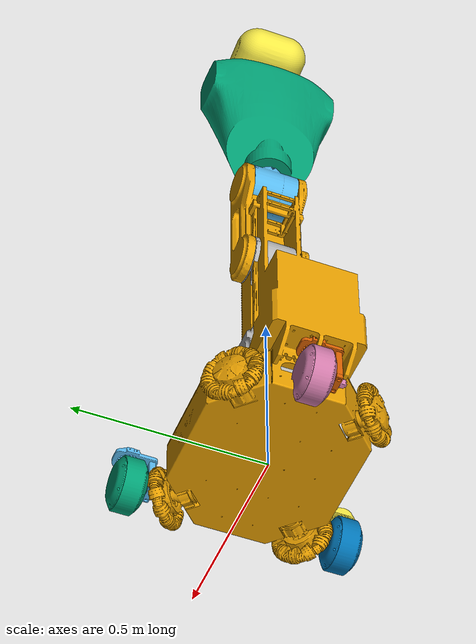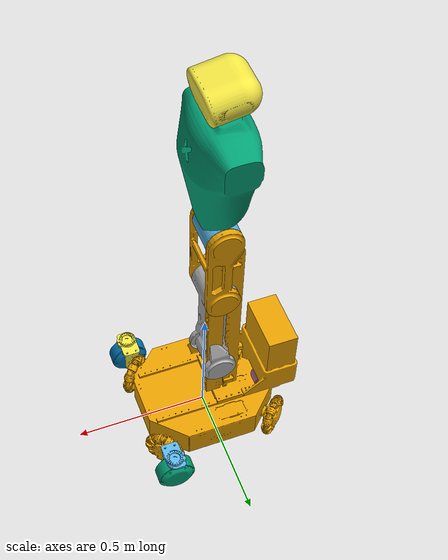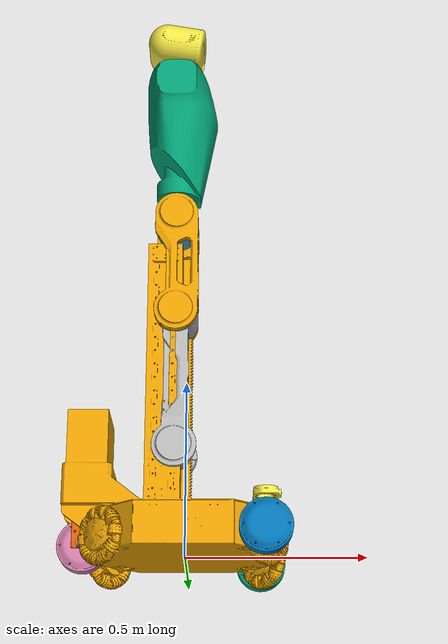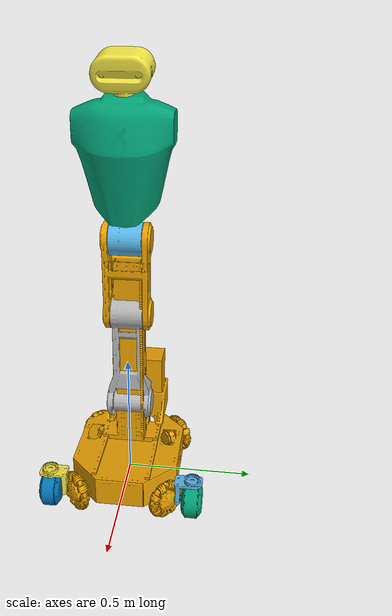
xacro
<?xml version="1.0" ?>
<!-- |    Complete Robot Description for Agibot G1                                     | -->
<!-- |    This file includes the base robot structure and both arms                    | -->
<robot name="Galaxea_R1" xmlns:xacro="http://www.ros.org/wiki/xacro">
	<xacro:property name="PI" value="3.1415926535897931"/>
	<xacro:arg name="type" default="base"/>

	<xacro:if value="${'$(arg type)' == 'base'}">
		<!-- Include Chassis -->
		<xacro:include filename="$(find galaxea_r1_description)/xacro/chassis.xacro"/>
		<xacro:Chassis/>

		<!-- Include Torso -->
		<xacro:include filename="$(find galaxea_r1_description)/xacro/torso.xacro"/>
		<xacro:Torso/>
	</xacro:if>
</robot>

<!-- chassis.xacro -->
<robot xmlns:xacro="http://www.ros.org/wiki/xacro">
	<xacro:property name="PI" value="3.1415926535897931"/>

	<xacro:macro name="Chassis">

		<!-- Base Link -->
		<link name="base_link">
			<inertial>
				<origin xyz="-0.0024126 -8.9626E-05 0.13736"/>
				<mass value="47.63"/>
				<inertia ixx="1.578" ixy="-1.2021E-05" ixz="0.053642" iyy="1.462" iyz="7.297E-06" izz="2.8318"/>
			</inertial>
			<visual>
				<geometry>
					<mesh filename="file://$(find galaxea_r1_description)/meshes/base_link.obj"/>
				</geometry>
			</visual>
			<collision>
				<geometry>
					<mesh filename="file://$(find galaxea_r1_description)/meshes/base_link.obj"/>
				</geometry>
			</collision>
		</link>

    <!-- Steer Motor Link 1 -->
    <link name="steer_motor_link1">
      <inertial>
        <origin xyz="0.00098921 -0.034312 -0.034597"/>
        <mass value="1.2"/>
        <inertia ixx="8.8522E-05" ixy="-3.7755E-06" ixz="4.5456E-09" iyy="7.5352E-05" iyz="-7.0316E-07" izz="0.00010165"/>
      </inertial>
      <visual>
        <geometry>
          <mesh filename="file://$(find galaxea_r1_description)/meshes/steer_motor.obj"/>
        </geometry>
      </visual>
    </link>

    <!-- Steer Motor Joint 1: Base to Steer Motor 1 -->
    <joint name="steer_joint1" type="revolute">
      <origin xyz="0.21516 0.28 0.12375"/>
      <parent link="base_link"/>
      <child link="steer_motor_link1"/>
      <axis xyz="0 0 1"/>
      <limit lower="${-PI/2}" upper="${PI/2}" effort="44" velocity="${PI}"/>
    </joint>

    <!-- Wheel Motor Link 1 -->
    <link name="wheel_motor_link1">
      <inertial>
        <origin xyz="-2.6184E-06 0.0015607 1.6575E-07"/>
        <mass value="5"/>
        <inertia ixx="0.00089952" ixy="6.916E-08" ixz="7.5501E-10" iyy="0.0015854" iyz="7.6011E-12" izz="0.00089958"/>
      </inertial>
      <visual>
        <geometry>
          <mesh filename="file://$(find galaxea_r1_description)/meshes/wheel_motor.obj"/>
        </geometry>
      </visual>
      <collision>
        <origin rpy="${PI/2} 0 0"/>
        <geometry>
          <cylinder radius="0.07" length="0.048"/>
        </geometry>
      </collision>
    </link>

    <!-- Wheel Motor Joint 1: Steer Motor 1 to Wheel Motor 1 -->
    <joint name="wheel_joint1" type="continuous">
      <origin xyz="0 0 -0.09525" rpy="0 0 ${PI}"/>
      <parent link="steer_motor_link1"/>
      <child link="wheel_motor_link1"/>
      <axis xyz="0 -1 0"/>
    </joint>

    <!-- Steer Motor Link 2 -->
    <link name="steer_motor_link2">
      <inertial>
        <origin xyz="0.00098879 0.034317 -0.034601"/>
        <mass value="1.2"/>
        <inertia ixx="8.8509E-05" ixy="3.7728E-06" ixz="4.584E-09" iyy="7.5337E-05" iyz="7.0145E-07" izz="0.00010162"/>
      </inertial>
      <visual>
        <origin rpy="0 0 ${PI}"/>
        <geometry>
          <mesh filename="file://$(find galaxea_r1_description)/meshes/steer_motor.obj"/>
        </geometry>
      </visual>
      <collision>
        <origin rpy="0 0 ${PI}"/>
        <geometry>
          <mesh filename="file://$(find galaxea_r1_description)/meshes/steer_motor.obj"/>
        </geometry>
      </collision>
    </link>

    <!-- Steer Motor Joint 2: Base to Steer Motor 2 -->
    <joint name="steer_joint2" type="revolute">
      <origin xyz="0.21516 -0.28 0.12375"/>
      <parent link="base_link"/>
      <child link="steer_motor_link2"/>
      <axis xyz="0 0 1"/>
      <limit lower="${-PI/2}" upper="${PI/2}" effort="44" velocity="${PI}"/>
    </joint>

    <!-- Wheel Motor Link 2 -->
    <link name="wheel_motor_link2">
      <inertial>
        <origin xyz="2.6199E-06 -0.0015607 1.6573E-07"/>
        <mass value="5"/>
        <inertia ixx="0.00089952" ixy="6.9163E-08" ixz="-7.5368E-10" iyy="0.0015854" iyz="-7.6749E-12" izz="0.00089958"/>
      </inertial>
      <visual>
        <geometry>
          <mesh filename="file://$(find galaxea_r1_description)/meshes/wheel_motor.obj"/>
        </geometry>
      </visual>
      <collision>
        <origin rpy="${PI/2} 0 0"/>
        <geometry>
          <cylinder radius="0.07" length="0.048"/>
        </geometry>
      </collision>
    </link>

    <!-- Wheel Motor Joint 2: Steer Motor 2 to Wheel Motor 2 -->
    <joint name="wheel_joint2" type="continuous">
      <origin xyz="0 0 -0.09525"/>
      <parent link="steer_motor_link2"/>
      <child link="wheel_motor_link2"/>
      <axis xyz="0 1 0"/>
    </joint>

    <!-- Steer Motor Link 3 -->
    <link name="steer_motor_link3">
      <inertial>
        <origin xyz="-0.00098879 -0.034317 -0.034601"/>
        <mass value="1.2"/>
        <inertia ixx="8.8509E-05" ixy="3.7728E-06" ixz="-4.584E-09" iyy="7.5337E-05" iyz="-7.0145E-07" izz="0.00010162"/>
      </inertial>
      <visual>
        <geometry>
          <mesh filename="file://$(find galaxea_r1_description)/meshes/steer_motor.obj"/>
        </geometry>
      </visual>
      <collision>
        <geometry>
          <mesh filename="file://$(find galaxea_r1_description)/meshes/steer_motor.obj"/>
        </geometry>
      </collision>
    </link>

    <!-- Steer Motor Joint 3: Base to Steer Motor 3 -->
    <joint name="steer_joint3" type="revolute">
      <origin xyz="-0.28084 0 0.12375"/>
      <parent link="base_link"/>
      <child link="steer_motor_link3"/>
      <axis xyz="0 0 1"/>
      <limit lower="${-PI/2}" upper="${PI/2}" effort="44" velocity="${PI}"/>
    </joint>

    <!-- Wheel Motor Link 3 -->
    <link name="wheel_motor_link3">
      <inertial>
        <origin xyz="2.6203E-06 0.0015607 -1.6564E-07"/>
        <mass value="5"/>
        <inertia ixx="0.00089952" ixy="-6.9072E-08" ixz="7.5036E-10" iyy="0.0015854" iyz="-7.845E-12" izz="0.00089958"/>
      </inertial>
      <visual>
        <geometry>
          <mesh filename="file://$(find galaxea_r1_description)/meshes/wheel_motor.obj"/>
        </geometry>
      </visual>
      <collision>
        <origin rpy="${PI/2} 0 0"/>
        <geometry>
          <cylinder radius="0.07" length="0.048"/>
        </geometry>
      </collision>
    </link>

    <!-- Wheel Motor Joint 3: Steer Motor 3 to Wheel Motor 3 -->
    <joint name="wheel_joint3" type="continuous">
      <origin xyz="0 0 -0.09525" rpy="0 0 ${PI}"/>
      <parent link="steer_motor_link3"/>
      <child link="wheel_motor_link3"/>
      <axis xyz="0 -1 0"/>
    </joint>
  </xacro:macro>
</robot>

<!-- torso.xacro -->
<robot xmlns:xacro="http://www.ros.org/wiki/xacro">
	<xacro:property name="PI" value="3.1415926535897931"/>

	<xacro:macro name="Torso">

    <!-- Torso Link 1 -->
    <link name="torso_link1">
      <inertial>
        <origin xyz="0.00065636 0.0032247 0.23142"/>
        <mass value="5.72"/>
        <inertia ixx="0.10931" ixy="7.7893E-06" ixz="-0.00017473" iyy="0.10736" iyz="0.00013763" izz="0.0081222"/>
      </inertial>
      <visual>
        <geometry>
          <mesh filename="file://$(find galaxea_r1_description)/meshes/torso_link1.obj"/>
        </geometry>
      </visual>
      <collision>
        <geometry>
          <mesh filename="file://$(find galaxea_r1_description)/meshes/torso_link1.obj"/>
        </geometry>
      </collision>
    </link>

    <!-- Torso Joint 1: Base to Torso 1 -->
    <joint name="torso_joint1" type="revolute">
      <origin xyz="-0.032845 0 0.301"/>
      <parent link="base_link"/>
      <child link="torso_link1"/>
      <axis xyz="0 1 0"/>
      <limit lower="-1.1345" upper="1.8326" effort="500" velocity="2.5"/>
    </joint>

    <!-- Torso Link 2 -->
    <link name="torso_link2">
      <inertial>
        <origin xyz="0.0052517 0.014412 0.15711"/>
        <mass value="3.5"/>
        <inertia ixx="0.026081" ixy="-3.3406E-07" ixz="0.00024541" iyy="0.027574" iyz="3.8474E-07" izz="0.0018515"/>
      </inertial>
      <visual>
        <geometry>
          <mesh filename="file://$(find galaxea_r1_description)/meshes/torso_link2.obj"/>
        </geometry>
      </visual>
      <collision>
        <geometry>
          <mesh filename="file://$(find galaxea_r1_description)/meshes/torso_link2.obj"/>
        </geometry>
      </collision>
    </link>

    <!-- Torso Joint 2: Torso 1 to Torso 2 -->
    <joint name="torso_joint2" type="revolute">
      <origin xyz="0 0 0.4"/>
      <parent link="torso_link1"/>
      <child link="torso_link2"/>
      <axis xyz="0 1 0"/>
      <limit lower="-2.7925" upper="2.5307" effort="500" velocity="2.5"/>
    </joint>

    <!-- Torso Link 3 -->
    <link name="torso_link3">
      <inertial>
        <origin xyz="-7.551E-06 -0.0092667 0.0042124"/>
        <mass value="3.4"/>
        <inertia ixx="0.0014058" ixy="3.5487E-07" ixz="9.0955E-08" iyy="0.0021992" iyz="1.6338E-05" izz="0.0013332"/>
      </inertial>
      <visual>
        <geometry>
          <mesh filename="file://$(find galaxea_r1_description)/meshes/torso_link3.obj"/>
        </geometry>
      </visual>
      <collision>
        <geometry>
          <mesh filename="file://$(find galaxea_r1_description)/meshes/torso_link3.obj"/>
        </geometry>
      </collision>
    </link>

    <!-- Torso Joint 3: Torso 2 to Torso 3 -->
    <joint name="torso_joint3" type="revolute">
      <origin xyz="0 0 0.3"/>
      <parent link="torso_link2"/>
      <child link="torso_link3"/>
      <axis xyz="0 -1 0"/>
      <limit lower="-1.8326" upper="${PI/2}" effort="500" velocity="2.5"/>
    </joint>

    <!-- Torso Link 4 -->
    <link name="torso_link4">
      <inertial>
        <origin xyz="-3.7511E-08 5.2756E-07 0.018688"/>
        <mass value="7.4"/>
        <inertia ixx="0.0014989" ixy="2.9183E-08" ixz="-7.7884E-10" iyy="0.001499" iyz="-1.2513E-10" izz="0.0019043"/>
      </inertial>
      <visual>
        <geometry>
          <mesh filename="file://$(find galaxea_r1_description)/meshes/torso_link4.obj"/>
        </geometry>
      </visual>
      <collision>
        <geometry>
          <mesh filename="file://$(find galaxea_r1_description)/meshes/torso_link4.obj"/>
        </geometry>
      </collision>
    </link>

    <!-- Torso Joint 4: Torso 3 to Torso 4 -->
    <joint name="torso_joint4" type="revolute">
      <origin xyz="0 0 0.09962"/>
      <parent link="torso_link3"/>
      <child link="torso_link4"/>
      <axis xyz="0 0 1"/>
      <limit lower="-3.0543" upper="3.0543" effort="500" velocity="2.5"/>
    </joint>

    <!-- ZED Camera Link -->
    <link name="zed_link">
      <inertial>
        <origin xyz="0.060004 0.015906 -0.068413"/>
        <mass value="2.05"/>
        <inertia ixx="0.010375" ixy="1.9044E-07" ixz="1.5997E-08" iyy="0.014618" iyz="0.00028961" izz="0.012229"/>
      </inertial>
      <visual>
        <geometry>
          <mesh filename="file://$(find galaxea_r1_description)/meshes/zed_link.obj"/>
        </geometry>
      </visual>
      <collision>
        <geometry>
          <mesh filename="file://$(find galaxea_r1_description)/meshes/zed_link.obj"/>
        </geometry>
      </collision>
    </link>

    <!-- ZED Joint: Torso 4 to ZED -->
    <joint name="zed_joint" type="fixed">
      <origin xyz="0.065512 0.060005 0.47598" rpy="-1.9199 0 ${-PI/2}"/>
      <parent link="torso_link4"/>
      <child link="zed_link"/>
      <axis xyz="0 0 0"/>
    </joint>
  </xacro:macro>
</robot>
